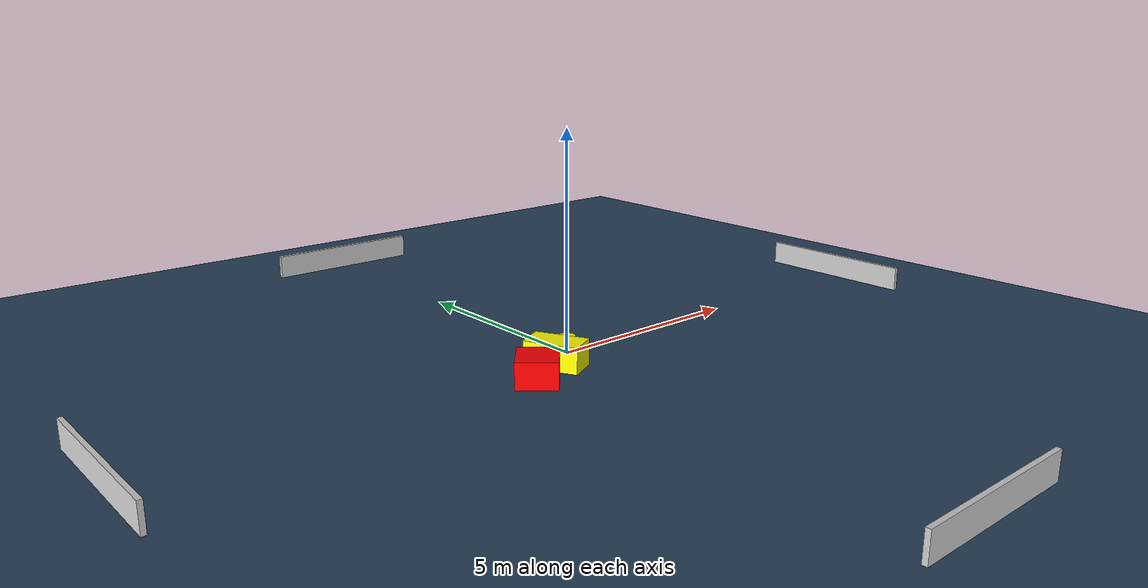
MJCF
<?xml version="1.0" ?>
<mujoco model="generated_environment">
  <option timestep="0.01" integrator="RK4" cone="elliptic"/>
  <default>
    <geom density="1"/>
  </default>
  <asset>
    <texture builtin="gradient" height="3072" name="skybox" rgb1="0.3 0.5 0.7" rgb2="0 0 0" type="skybox" width="512"/>
    <texture builtin="checker" height="300" name="groundplane" rgb1="0.2 0.3 0.4" rgb2="0.1 0.2 0.3" type="2d" width="300"/>
    <material name="groundplane" reflectance="0.2" texrepeat="5 5" texture="groundplane"/>
  </asset>
  <worldbody>
    <light dir="0 0 -1" directional="true" pos="0 0 1.5"/>
    <geom condim="3" friction="0.5 0.005 0.001" material="groundplane" name="floor" pos="0 0 0" size="0 0 0.05" type="plane"/>
    <body name="walls">
      <geom name="wall_1" condim="4" pos="-10.0 0.0 0.3" rgba="0.800000011920929 0.800000011920929 0.800000011920929 1.0" size="0.05 2.0 0.3" type="box"/>
      <geom name="wall_2" condim="4" pos="10.0 0.0 0.3" rgba="0.800000011920929 0.800000011920929 0.800000011920929 1.0" size="0.05 2.0 0.3" type="box"/>
      <geom name="wall_3" condim="4" pos="0.0 -10.0 0.3" rgba="0.800000011920929 0.800000011920929 0.800000011920929 1.0" size="2.0 0.05 0.3" type="box"/>
      <geom name="wall_4" condim="4" pos="0.0 10.0 0.3" rgba="0.800000011920929 0.800000011920929 0.800000011920929 1.0" size="2.0 0.05 0.3" type="box"/>
    </body>
    <body name="robot">
      <joint name="joint_x" type="slide" pos="0 0 0" axis="1 0 0"/>
      <joint name="joint_y" type="slide" pos="0 0 0" axis="0 1 0"/>
      <geom name="robot" type="cylinder" pos="0.0 0.0 0.2" size="0.2 0.2 0.0" mass="5.0" friction="1.0 0.005 0.0001" condim="4" rgba="1.0 1.0 0.0 1.0"/>
    </body>
    <body name="obstacle_1_movable">
      <geom name="obstacle_1_movable" condim="4" pos="-0.7341503649835236 -0.5030843986890385 0.3" euler="0 0 206.7209058474579" friction="0.0 0.005 0.001" rgba="1.0 1.0 0.0 1.0" size="0.34799375796303456 0.6290489648290049 0.3" type="box" mass="0.1"/>
      <joint type="free"/>
    </body>
    <body name="obstacle_2_static">
      <geom name="obstacle_2_static" condim="4" pos="-1.6290108250879274 -0.9680063449024525 0.3" euler="0 0 138.8893815086292" friction="0.0 0.005 0.001" rgba="1.0 0.0 0.0 1.0" size="0.45381681768071286 0.4769706393378891 0.3" type="box"/>
    </body>
  </worldbody>
  <actuator>
    <motor name="actuator_x" joint="joint_x" gear="1" ctrlrange="-1 1"/>
    <motor name="actuator_y" joint="joint_y" gear="1" ctrlrange="-1 1"/>
  </actuator>
</mujoco>
